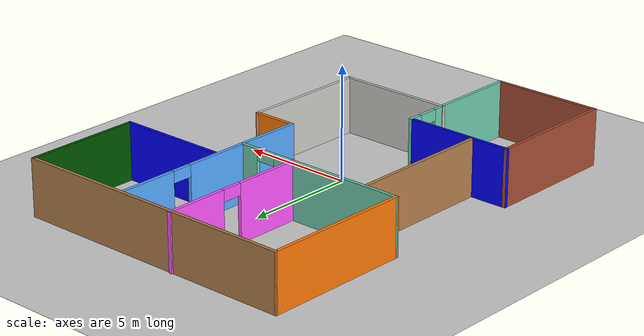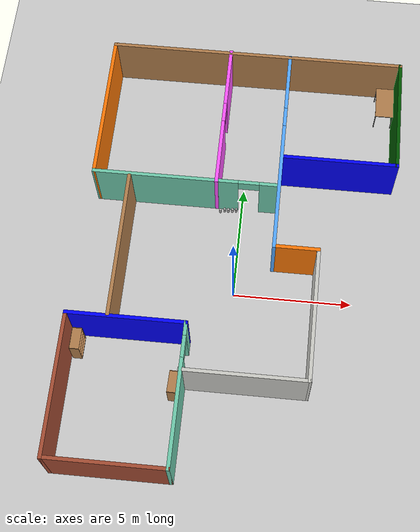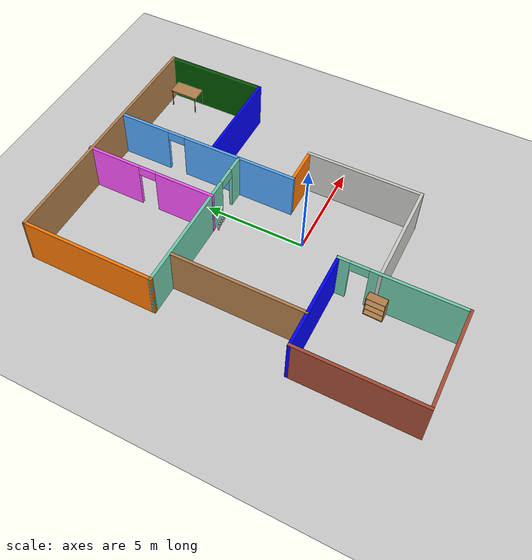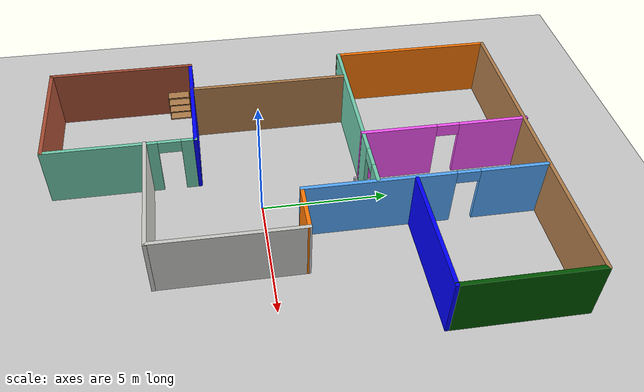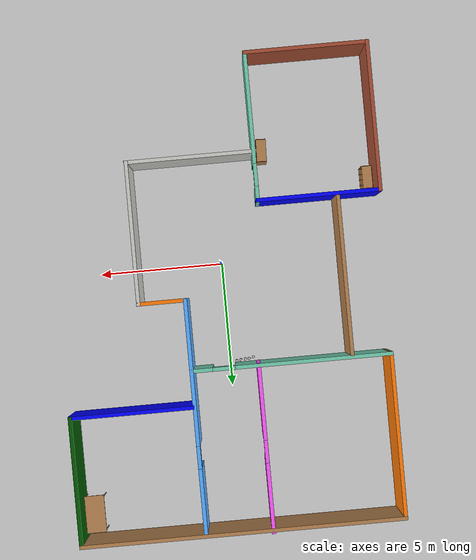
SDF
<sdf version="1.6">
 <world name="default">
  <light name="sun" type="directional">
   <pose>0 0 10 0 -0 0</pose>
   <diffuse>0.8 0.8 0.8 1</diffuse>
   <specular>0.2 0.2 0.2 1</specular>
   <attenuation>
    <range>1000</range>
    <constant>0.9</constant>
    <linear>0.01</linear>
    <quadratic>0.001</quadratic>
   </attenuation>
   <direction>-0.5 0.1 -0.9</direction>
  </light>
  <model name="ground_plane">
   <static>1</static>
   <link name="link">
    <collision name="collision">
     <geometry><plane><normal>0 0 1</normal><size>100 100</size></plane></geometry>
     <surface><friction><ode><mu>100</mu><mu2>50</mu2></ode></friction></surface>
    </collision>
    <visual name="visual">
     <cast_shadows>0</cast_shadows>
     <geometry><plane><normal>0 0 1</normal><size>100 100</size></plane></geometry>
     <material>
      <script><uri>file://media/materials/scripts/gazebo.material</uri><name>Gazebo/Grey</name></script>
     </material>
    </visual>
   </link>
  </model>
  <gravity>0 0 -9.8</gravity>
  <magnetic_field>6e-06 2.3e-05 -4.2e-05</magnetic_field>
  <atmosphere type="adiabatic"/>
  <physics name="default_physics" default="0" type="ode">
   <max_step_size>0.001</max_step_size>
   <real_time_factor>1</real_time_factor>
   <real_time_update_rate>1000</real_time_update_rate>
  </physics>
  <scene><ambient>0.4 0.4 0.4 1</ambient><background>0.7 0.7 0.7 1</background><shadows>1</shadows></scene>
  <spherical_coordinates>
   <surface_model>EARTH_WGS84</surface_model>
   <latitude_deg>0</latitude_deg>
   <longitude_deg>0</longitude_deg>
   <elevation>0</elevation>
   <heading_deg>0</heading_deg>
  </spherical_coordinates>
  <model name="new_building">
   <pose>-0.01155 1.28324 0 0 -0 0</pose>
   <link name="Wall_0">
    <collision name="Wall_0_Collision">
     <geometry><box><size>13 0.15 2.5</size></box></geometry>
     <pose>0 0 1.25 0 -0 0</pose>
    </collision>
    <visual name="Wall_0_Visual">
     <pose>0 0 1.25 0 -0 0</pose>
     <geometry><box><size>13 0.15 2.5</size></box></geometry>
     <material>
      <script><uri>file://media/materials/scripts/gazebo.material</uri><name>Gazebo/Wood</name></script>
      <ambient>1 1 1 1</ambient>
     </material>
     <meta><layer>0</layer></meta>
    </visual>
    <pose>0.081318 9.40266 0 0 -0 0</pose>
   </link>
   <link name="Wall_1">
    <collision name="Wall_1_Collision">
     <geometry><box><size>5.25 0.15 2.5</size></box></geometry>
     <pose>0 0 1.25 0 -0 0</pose>
    </collision>
    <visual name="Wall_1_Visual">
     <pose>0 0 1.25 0 -0 0</pose>
     <geometry><box><size>5.25 0.15 2.5</size></box></geometry>
     <material>
      <script><uri>file://media/materials/scripts/gazebo.material</uri><name>Gazebo/Grey</name></script>
      <ambient>0 0.333333 0 1</ambient>
     </material>
     <meta><layer>0</layer></meta>
    </visual>
    <pose>6.50632 6.85266 0 0 0 -1.5708</pose>
   </link>
   <link name="Wall_14">
    <collision name="Wall_14_Collision">
     <geometry><box><size>6 0.15 2.5</size></box></geometry>
     <pose>0 0 1.25 0 -0 0</pose>
    </collision>
    <visual name="Wall_14_Visual">
     <pose>0 0 1.25 0 -0 0</pose>
     <geometry><box><size>6 0.15 2.5</size></box></geometry>
     <material>
      <script><uri>file://media/materials/scripts/gazebo.material</uri><name>Gazebo/Bricks</name></script>
      <ambient>1 1 1 1</ambient>
     </material>
     <meta><layer>0</layer></meta>
    </visual>
    <pose>-6.50632 -6.54004 0 0 0 -1.5708</pose>
   </link>
   <link name="Wall_15">
    <collision name="Wall_15_Collision">
     <geometry><box><size>5 0.15 2.5</size></box></geometry>
     <pose>0 0 1.25 0 -0 0</pose>
    </collision>
    <visual name="Wall_15_Visual">
     <pose>0 0 1.25 0 -0 0</pose>
     <geometry><box><size>5 0.15 2.5</size></box></geometry>
     <material>
      <script><uri>file://media/materials/scripts/gazebo.material</uri><name>Gazebo/Bricks</name></script>
      <ambient>1 1 1 1</ambient>
     </material>
     <meta><layer>0</layer></meta>
    </visual>
    <pose>-4.08132 -9.46504 0 0 -0 0</pose>
   </link>
   <link name="Wall_16">
    <pose>-1.65632 -6.54004 0 0 -0 1.5708</pose>
    <visual name="Wall_16_Visual_0">
     <pose>-0.764135 0 1.25 0 -0 0</pose>
     <geometry><box><size>4.47173 0.15 2.5</size></box></geometry>
     <material>
      <script><uri>file://media/materials/scripts/gazebo.material</uri><name>Gazebo/Grey</name></script>
      <ambient>0.435294 0.796078 0.67451 1</ambient>
     </material>
     <meta><layer>0</layer></meta>
    </visual>
    <collision name="Wall_16_Collision_0">
     <geometry><box><size>4.47173 0.15 2.5</size></box></geometry>
     <pose>-0.764135 0 1.25 0 -0 0</pose>
    </collision>
    <visual name="Wall_16_Visual_1">
     <pose>2.68587 0 1.25 0 -0 0</pose>
     <geometry><box><size>0.628271 0.15 2.5</size></box></geometry>
     <material>
      <script><uri>file://media/materials/scripts/gazebo.material</uri><name>Gazebo/Grey</name></script>
      <ambient>0.435294 0.796078 0.67451 1</ambient>
     </material>
     <meta><layer>0</layer></meta>
    </visual>
    <collision name="Wall_16_Collision_1">
     <geometry><box><size>0.628271 0.15 2.5</size></box></geometry>
     <pose>2.68587 0 1.25 0 -0 0</pose>
    </collision>
    <visual name="Wall_16_Visual_2">
     <pose>1.92173 0 2.25 0 -0 0</pose>
     <geometry><box><size>0.9 0.15 0.5</size></box></geometry>
     <material>
      <script><uri>file://media/materials/scripts/gazebo.material</uri><name>Gazebo/Grey</name></script>
      <ambient>0.435294 0.796078 0.67451 1</ambient>
     </material>
     <meta><layer>0</layer></meta>
    </visual>
    <collision name="Wall_16_Collision_2">
     <geometry><box><size>0.9 0.15 0.5</size></box></geometry>
     <pose>1.92173 0 2.25 0 -0 0</pose>
    </collision>
   </link>
   <link name="Wall_18">
    <collision name="Wall_18_Collision">
     <geometry><box><size>5 0.15 2.5</size></box></geometry>
     <pose>0 0 1.25 0 -0 0</pose>
    </collision>
    <visual name="Wall_18_Visual">
     <pose>0 0 1.25 0 -0 0</pose>
     <geometry><box><size>5 0.15 2.5</size></box></geometry>
     <material>
      <script><uri>file://media/materials/scripts/gazebo.material</uri><name>Gazebo/Grey</name></script>
      <ambient>0 0 1 1</ambient>
     </material>
     <meta><layer>0</layer></meta>
    </visual>
    <pose>-4.08132 -3.61504 0 0 -0 0</pose>
   </link>
   <link name="Wall_2">
    <collision name="Wall_2_Collision">
     <geometry><box><size>5 0.15 2.5</size></box></geometry>
     <pose>0 0 1.25 0 -0 0</pose>
    </collision>
    <visual name="Wall_2_Visual">
     <pose>0 0 1.25 0 -0 0</pose>
     <geometry><box><size>5 0.15 2.5</size></box></geometry>
     <material>
      <script><uri>file://media/materials/scripts/gazebo.material</uri><name>Gazebo/Grey</name></script>
      <ambient>0 0 1 1</ambient>
     </material>
     <meta><layer>0</layer></meta>
    </visual>
    <pose>4.08132 4.30266 0 0 -0 3.14159</pose>
   </link>
   <link name="Wall_20">
    <collision name="Wall_20_Collision">
     <geometry><box><size>6.5 0.15 2.5</size></box></geometry>
     <pose>0 0 1.25 0 -0 0</pose>
    </collision>
    <visual name="Wall_20_Visual">
     <pose>0 0 1.25 0 -0 0</pose>
     <geometry><box><size>6.5 0.15 2.5</size></box></geometry>
     <material>
      <script><uri>file://media/materials/scripts/gazebo.material</uri><name>Gazebo/Wood</name></script>
      <ambient>1 1 1 1</ambient>
     </material>
     <meta><layer>0</layer></meta>
    </visual>
    <pose>-4.81839 -0.424532 0 0 -0 1.5708</pose>
   </link>
   <link name="Wall_22">
    <pose>-2.4285 2.87469 0 0 -0 0</pose>
    <visual name="Wall_22_Visual_0">
     <pose>-0.875579 0 1.25 0 -0 0</pose>
     <geometry><box><size>6.24884 0.15 2.5</size></box></geometry>
     <material>
      <script><uri>file://media/materials/scripts/gazebo.material</uri><name>Gazebo/Grey</name></script>
      <ambient>0.435294 0.796078 0.67451 1</ambient>
     </material>
     <meta><layer>0</layer></meta>
    </visual>
    <collision name="Wall_22_Collision_0">
     <geometry><box><size>6.24884 0.15 2.5</size></box></geometry>
     <pose>-0.875579 0 1.25 0 -0 0</pose>
    </collision>
    <visual name="Wall_22_Visual_1">
     <pose>3.57442 0 1.25 0 -0 0</pose>
     <geometry><box><size>0.851158 0.15 2.5</size></box></geometry>
     <material>
      <script><uri>file://media/materials/scripts/gazebo.material</uri><name>Gazebo/Grey</name></script>
      <ambient>0.435294 0.796078 0.67451 1</ambient>
     </material>
     <meta><layer>0</layer></meta>
    </visual>
    <collision name="Wall_22_Collision_1">
     <geometry><box><size>0.851158 0.15 2.5</size></box></geometry>
     <pose>3.57442 0 1.25 0 -0 0</pose>
    </collision>
    <visual name="Wall_22_Visual_2">
     <pose>2.69884 0 2.25 0 -0 0</pose>
     <geometry><box><size>0.9 0.15 0.5</size></box></geometry>
     <material>
      <script><uri>file://media/materials/scripts/gazebo.material</uri><name>Gazebo/Grey</name></script>
      <ambient>0.435294 0.796078 0.67451 1</ambient>
     </material>
     <meta><layer>0</layer></meta>
    </visual>
    <collision name="Wall_22_Collision_2">
     <geometry><box><size>0.9 0.15 0.5</size></box></geometry>
     <pose>2.69884 0 2.25 0 -0 0</pose>
    </collision>
   </link>
   <link name="Wall_24">
    <collision name="Wall_24_Collision">
     <geometry><box><size>6.67799 0.15 2.5</size></box></geometry>
     <pose>0 0 1.25 0 -0 0</pose>
    </collision>
    <visual name="Wall_24_Visual">
     <pose>0 0 1.25 0 -0 0</pose>
     <geometry><box><size>6.67799 0.15 2.5</size></box></geometry>
     <material>
      <script><uri>file://media/materials/scripts/gazebo.material</uri><name>Gazebo/Grey</name></script>
      <ambient>0.996078 0.47451 0.0196078 1</ambient>
     </material>
     <meta><layer>0</layer></meta>
    </visual>
    <pose>-6.34859 6.13868 0 0 0 -1.5723</pose>
   </link>
   <link name="Wall_26">
    <pose>-1.10877 6.16504 0 0 -0 1.5708</pose>
    <visual name="Wall_26_Visual_0">
     <pose>-1.85318 0 1.25 0 -0 0</pose>
     <geometry><box><size>3.04365 0.15 2.5</size></box></geometry>
     <material>
      <script><uri>file://media/materials/scripts/gazebo.material</uri><name>Gazebo/Grey</name></script>
      <ambient>1 0.333333 1 1</ambient>
     </material>
     <meta><layer>0</layer></meta>
    </visual>
    <collision name="Wall_26_Collision_0">
     <geometry><box><size>3.04365 0.15 2.5</size></box></geometry>
     <pose>-1.85318 0 1.25 0 -0 0</pose>
    </collision>
    <visual name="Wall_26_Visual_1">
     <pose>1.97182 0 1.25 0 -0 0</pose>
     <geometry><box><size>2.80635 0.15 2.5</size></box></geometry>
     <material>
      <script><uri>file://media/materials/scripts/gazebo.material</uri><name>Gazebo/Grey</name></script>
      <ambient>1 0.333333 1 1</ambient>
     </material>
     <meta><layer>0</layer></meta>
    </visual>
    <collision name="Wall_26_Collision_1">
     <geometry><box><size>2.80635 0.15 2.5</size></box></geometry>
     <pose>1.97182 0 1.25 0 -0 0</pose>
    </collision>
    <visual name="Wall_26_Visual_2">
     <pose>0.118651 0 2.25 0 -0 0</pose>
     <geometry><box><size>0.9 0.15 0.5</size></box></geometry>
     <material>
      <script><uri>file://media/materials/scripts/gazebo.material</uri><name>Gazebo/Grey</name></script>
      <ambient>1 0.333333 1 1</ambient>
     </material>
     <meta><layer>0</layer></meta>
    </visual>
    <collision name="Wall_26_Collision_2">
     <geometry><box><size>0.9 0.15 0.5</size></box></geometry>
     <pose>0.118651 0 2.25 0 -0 0</pose>
    </collision>
   </link>
   <link name="Wall_4">
    <pose>1.56183 4.72766 0 0 0 -1.5708</pose>
    <visual name="Wall_4_Visual_0">
     <pose>-3.37801 0 1.25 0 -0 0</pose>
     <geometry><box><size>2.74397 0.15 2.5</size></box></geometry>
     <material>
      <script><uri>file://media/materials/scripts/gazebo.material</uri><name>Gazebo/Grey</name></script>
      <ambient>0.333333 0.666667 1 1</ambient>
     </material>
     <meta><layer>0</layer></meta>
    </visual>
    <collision name="Wall_4_Collision_0">
     <geometry><box><size>2.74397 0.15 2.5</size></box></geometry>
     <pose>-3.37801 0 1.25 0 -0 0</pose>
    </collision>
    <visual name="Wall_4_Visual_1">
     <pose>1.82199 0 1.25 0 -0 0</pose>
     <geometry><box><size>5.85603 0.15 2.5</size></box></geometry>
     <material>
      <script><uri>file://media/materials/scripts/gazebo.material</uri><name>Gazebo/Grey</name></script>
      <ambient>0.333333 0.666667 1 1</ambient>
     </material>
     <meta><layer>0</layer></meta>
    </visual>
    <collision name="Wall_4_Collision_1">
     <geometry><box><size>5.85603 0.15 2.5</size></box></geometry>
     <pose>1.82199 0 1.25 0 -0 0</pose>
    </collision>
    <visual name="Wall_4_Visual_2">
     <pose>-1.55603 0 2.25 0 -0 0</pose>
     <geometry><box><size>0.9 0.15 0.5</size></box></geometry>
     <material>
      <script><uri>file://media/materials/scripts/gazebo.material</uri><name>Gazebo/Grey</name></script>
      <ambient>0.333333 0.666667 1 1</ambient>
     </material>
     <meta><layer>0</layer></meta>
    </visual>
    <collision name="Wall_4_Collision_2">
     <geometry><box><size>0.9 0.15 0.5</size></box></geometry>
     <pose>-1.55603 0 2.25 0 -0 0</pose>
    </collision>
   </link>
   <link name="Wall_5">
    <collision name="Wall_5_Collision">
     <geometry><box><size>2 0.15 2.5</size></box></geometry>
     <pose>0 0 1.25 0 -0 0</pose>
    </collision>
    <visual name="Wall_5_Visual">
     <pose>0 0 1.25 0 -0 0</pose>
     <geometry><box><size>2 0.15 2.5</size></box></geometry>
     <material>
      <script><uri>file://media/materials/scripts/gazebo.material</uri><name>Gazebo/Grey</name></script>
      <ambient>0.996078 0.47451 0.0196078 1</ambient>
     </material>
     <meta><layer>0</layer></meta>
    </visual>
    <pose>2.48683 0.052664 0 0 -0 0</pose>
   </link>
   <link name="Wall_6">
    <collision name="Wall_6_Collision">
     <geometry><box><size>5.76161 0.15 2.5</size></box></geometry>
     <pose>0 0 1.25 0 -0 0</pose>
    </collision>
    <visual name="Wall_6_Visual">
     <pose>0 0 1.25 0 -0 0</pose>
     <geometry><box><size>5.76161 0.15 2.5</size></box></geometry>
     <material>
      <script><uri>file://media/materials/scripts/gazebo.material</uri><name>Gazebo/CeilingTiled</name></script>
      <ambient>1 1 1 1</ambient>
     </material>
     <meta><layer>0</layer></meta>
    </visual>
    <pose>3.40608 -2.75309 0 0 0 -1.57285</pose>
   </link>
   <link name="Wall_7">
    <collision name="Wall_7_Collision">
     <geometry><box><size>5.25 0.15 2.5</size></box></geometry>
     <pose>0 0 1.25 0 -0 0</pose>
    </collision>
    <visual name="Wall_7_Visual">
     <pose>0 0 1.25 0 -0 0</pose>
     <geometry><box><size>5.25 0.15 2.5</size></box></geometry>
     <material>
      <script><uri>file://media/materials/scripts/gazebo.material</uri><name>Gazebo/CeilingTiled</name></script>
      <ambient>1 1 1 1</ambient>
     </material>
     <meta><layer>0</layer></meta>
    </visual>
    <pose>0.861826 -5.55884 0 0 -0 3.14159</pose>
   </link>
   <static>1</static>
  </model>
  <model name="bookshelf">
   <static>1</static>
   <link name="link">
    <inertial><mass>1</mass></inertial>
    <collision name="back">
     <pose>0 0.005 0.6 0 -0 0</pose>
     <geometry><box><size>0.9 0.01 1.2</size></box></geometry>
    </collision>
    <visual name="visual1">
     <pose>0 0.005 0.6 0 -0 0</pose>
     <geometry><box><size>0.9 0.01 1.2</size></box></geometry>
     <material>
      <script><uri>file://media/materials/scripts/gazebo.material</uri><name>Gazebo/Wood</name></script>
     </material>
    </visual>
    <collision name="left_side">
     <pose>0.45 -0.195 0.6 0 -0 0</pose>
     <geometry><box><size>0.02 0.4 1.2</size></box></geometry>
    </collision>
    <visual name="visual2">
     <pose>0.45 -0.195 0.6 0 -0 0</pose>
     <geometry><box><size>0.02 0.4 1.2</size></box></geometry>
     <material>
      <script><uri>file://media/materials/scripts/gazebo.material</uri><name>Gazebo/Wood</name></script>
     </material>
    </visual>
    <collision name="right_side">
     <pose>-0.45 -0.195 0.6 0 -0 0</pose>
     <geometry><box><size>0.02 0.4 1.2</size></box></geometry>
    </collision>
    <visual name="visual3">
     <pose>-0.45 -0.195 0.6 0 -0 0</pose>
     <geometry><box><size>0.02 0.4 1.2</size></box></geometry>
     <material>
      <script><uri>file://media/materials/scripts/gazebo.material</uri><name>Gazebo/Wood</name></script>
     </material>
    </visual>
    <collision name="bottom">
     <pose>0 -0.195 0.03 0 -0 0</pose>
     <geometry><box><size>0.88 0.4 0.06</size></box></geometry>
    </collision>
    <visual name="visual4">
     <pose>0 -0.195 0.03 0 -0 0</pose>
     <geometry><box><size>0.88 0.4 0.06</size></box></geometry>
     <material>
      <script><uri>file://media/materials/scripts/gazebo.material</uri><name>Gazebo/Wood</name></script>
     </material>
    </visual>
    <collision name="top">
     <pose>0 -0.195 1.19 0 -0 0</pose>
     <geometry><box><size>0.88 0.4 0.02</size></box></geometry>
    </collision>
    <visual name="visual5">
     <pose>0 -0.195 1.19 0 -0 0</pose>
     <geometry><box><size>0.88 0.4 0.02</size></box></geometry>
     <material>
      <script><uri>file://media/materials/scripts/gazebo.material</uri><name>Gazebo/Wood</name></script>
     </material>
    </visual>
    <collision name="low_shelf">
     <pose>0 -0.195 0.43 0 -0 0</pose>
     <geometry><box><size>0.88 0.4 0.02</size></box></geometry>
    </collision>
    <visual name="visual6">
     <pose>0 -0.195 0.43 0 -0 0</pose>
     <geometry><box><size>0.88 0.4 0.02</size></box></geometry>
     <material>
      <script><uri>file://media/materials/scripts/gazebo.material</uri><name>Gazebo/Wood</name></script>
     </material>
    </visual>
    <collision name="high_shelf">
     <pose>0 -0.195 0.8 0 -0 0</pose>
     <geometry><box><size>0.88 0.4 0.02</size></box></geometry>
    </collision>
    <visual name="visual7">
     <pose>0 -0.195 0.8 0 -0 0</pose>
     <geometry><box><size>0.88 0.4 0.02</size></box></geometry>
     <material>
      <script><uri>file://media/materials/scripts/gazebo.material</uri><name>Gazebo/Wood</name></script>
     </material>
    </visual>
   </link>
   <pose>-1.81283 -4.42557 0 0 0 -1.60048</pose>
  </model>
  <model name="beer">
   <link name="link">
    <pose>0 0 0.115 0 -0 0</pose>
    <inertial>
     <mass>0.39</mass>
     <inertia><ixx>0.00058</ixx><ixy>0</ixy><ixz>0</ixz><iyy>0.00058</iyy><iyz>0</iyz><izz>0.00019</izz></inertia>
    </inertial>
    <collision name="collision">
     <geometry><cylinder><radius>0.055</radius><length>0.23</length></cylinder></geometry>
    </collision>
    <visual name="visual">
     <geometry><cylinder><radius>0.055</radius><length>0.23</length></cylinder></geometry>
     <material>
      <script>
       <uri>model://beer/materials/scripts</uri>
       <uri>model://beer/materials/textures</uri>
       <name>Beer/Diffuse</name>
      </script>
     </material>
    </visual>
   </link>
   <pose>-0.420975 3.99114 -2e-06 1e-06 -0 -0.00013</pose>
  </model>
  <model name="beer_clone">
   <link name="link">
    <pose>0 0 0.115 0 -0 0</pose>
    <inertial>
     <mass>0.39</mass>
     <inertia><ixx>0.00058</ixx><ixy>0</ixy><ixz>0</ixz><iyy>0.00058</iyy><iyz>0</iyz><izz>0.00019</izz></inertia>
    </inertial>
    <collision name="collision">
     <geometry><cylinder><radius>0.055</radius><length>0.23</length></cylinder></geometry>
    </collision>
    <visual name="visual">
     <geometry><cylinder><radius>0.055</radius><length>0.23</length></cylinder></geometry>
     <material>
      <script>
       <uri>model://beer/materials/scripts</uri>
       <uri>model://beer/materials/textures</uri>
       <name>Beer/Diffuse</name>
      </script>
     </material>
    </visual>
   </link>
   <pose>-0.771657 3.97416 -2e-06 1e-06 0 -0.000136</pose>
  </model>
  <model name="beer_clone_0">
   <link name="link">
    <pose>0 0 0.115 0 -0 0</pose>
    <inertial>
     <mass>0.39</mass>
     <inertia><ixx>0.00058</ixx><ixy>0</ixy><ixz>0</ixz><iyy>0.00058</iyy><iyz>0</iyz><izz>0.00019</izz></inertia>
    </inertial>
    <collision name="collision">
     <geometry><cylinder><radius>0.055</radius><length>0.23</length></cylinder></geometry>
    </collision>
    <visual name="visual">
     <geometry><cylinder><radius>0.055</radius><length>0.23</length></cylinder></geometry>
     <material>
      <script>
       <uri>model://beer/materials/scripts</uri>
       <uri>model://beer/materials/textures</uri>
       <name>Beer/Diffuse</name>
      </script>
     </material>
    </visual>
   </link>
   <pose>-0.611208 3.9772 -2e-06 1e-06 -0 -0.000135</pose>
  </model>
  <model name="beer_clone_2">
   <link name="link">
    <pose>0 0 0.115 0 -0 0</pose>
    <inertial>
     <mass>0.39</mass>
     <inertia><ixx>0.00058</ixx><ixy>0</ixy><ixz>0</ixz><iyy>0.00058</iyy><iyz>0</iyz><izz>0.00019</izz></inertia>
    </inertial>
    <collision name="collision">
     <geometry><cylinder><radius>0.055</radius><length>0.23</length></cylinder></geometry>
    </collision>
    <visual name="visual">
     <geometry><cylinder><radius>0.055</radius><length>0.23</length></cylinder></geometry>
     <material>
      <script>
       <uri>model://beer/materials/scripts</uri>
       <uri>model://beer/materials/textures</uri>
       <name>Beer/Diffuse</name>
      </script>
     </material>
    </visual>
   </link>
   <pose>-0.264315 4.01853 -7e-06 0 0 -0.021698</pose>
  </model>
  <model name="beer_clone_2_clone">
   <link name="link">
    <pose>0 0 0.115 0 -0 0</pose>
    <inertial>
     <mass>0.39</mass>
     <inertia><ixx>0.00058</ixx><ixy>0</ixy><ixz>0</ixz><iyy>0.00058</iyy><iyz>0</iyz><izz>0.00019</izz></inertia>
    </inertial>
    <collision name="collision">
     <geometry><cylinder><radius>0.055</radius><length>0.23</length></cylinder></geometry>
    </collision>
    <visual name="visual">
     <geometry><cylinder><radius>0.055</radius><length>0.23</length></cylinder></geometry>
     <material>
      <script>
       <uri>model://beer/materials/scripts</uri>
       <uri>model://beer/materials/textures</uri>
       <name>Beer/Diffuse</name>
      </script>
     </material>
    </visual>
   </link>
   <pose>-0.948647 3.92583 -7e-06 0 0 -0.021702</pose>
  </model>
  <model name="bookshelf_0">
   <static>1</static>
   <link name="link">
    <inertial><mass>1</mass></inertial>
    <collision name="back">
     <pose>0 0.005 0.6 0 -0 0</pose>
     <geometry><box><size>0.9 0.01 1.2</size></box></geometry>
    </collision>
    <visual name="visual1">
     <pose>0 0.005 0.6 0 -0 0</pose>
     <geometry><box><size>0.9 0.01 1.2</size></box></geometry>
     <material>
      <script><uri>file://media/materials/scripts/gazebo.material</uri><name>Gazebo/Wood</name></script>
     </material>
    </visual>
    <collision name="left_side">
     <pose>0.45 -0.195 0.6 0 -0 0</pose>
     <geometry><box><size>0.02 0.4 1.2</size></box></geometry>
    </collision>
    <visual name="visual2">
     <pose>0.45 -0.195 0.6 0 -0 0</pose>
     <geometry><box><size>0.02 0.4 1.2</size></box></geometry>
     <material>
      <script><uri>file://media/materials/scripts/gazebo.material</uri><name>Gazebo/Wood</name></script>
     </material>
    </visual>
    <collision name="right_side">
     <pose>-0.45 -0.195 0.6 0 -0 0</pose>
     <geometry><box><size>0.02 0.4 1.2</size></box></geometry>
    </collision>
    <visual name="visual3">
     <pose>-0.45 -0.195 0.6 0 -0 0</pose>
     <geometry><box><size>0.02 0.4 1.2</size></box></geometry>
     <material>
      <script><uri>file://media/materials/scripts/gazebo.material</uri><name>Gazebo/Wood</name></script>
     </material>
    </visual>
    <collision name="bottom">
     <pose>0 -0.195 0.03 0 -0 0</pose>
     <geometry><box><size>0.88 0.4 0.06</size></box></geometry>
    </collision>
    <visual name="visual4">
     <pose>0 -0.195 0.03 0 -0 0</pose>
     <geometry><box><size>0.88 0.4 0.06</size></box></geometry>
     <material>
      <script><uri>file://media/materials/scripts/gazebo.material</uri><name>Gazebo/Wood</name></script>
     </material>
    </visual>
    <collision name="top">
     <pose>0 -0.195 1.19 0 -0 0</pose>
     <geometry><box><size>0.88 0.4 0.02</size></box></geometry>
    </collision>
    <visual name="visual5">
     <pose>0 -0.195 1.19 0 -0 0</pose>
     <geometry><box><size>0.88 0.4 0.02</size></box></geometry>
     <material>
      <script><uri>file://media/materials/scripts/gazebo.material</uri><name>Gazebo/Wood</name></script>
     </material>
    </visual>
    <collision name="low_shelf">
     <pose>0 -0.195 0.43 0 -0 0</pose>
     <geometry><box><size>0.88 0.4 0.02</size></box></geometry>
    </collision>
    <visual name="visual6">
     <pose>0 -0.195 0.43 0 -0 0</pose>
     <geometry><box><size>0.88 0.4 0.02</size></box></geometry>
     <material>
      <script><uri>file://media/materials/scripts/gazebo.material</uri><name>Gazebo/Wood</name></script>
     </material>
    </visual>
    <collision name="high_shelf">
     <pose>0 -0.195 0.8 0 -0 0</pose>
     <geometry><box><size>0.88 0.4 0.02</size></box></geometry>
    </collision>
    <visual name="visual7">
     <pose>0 -0.195 0.8 0 -0 0</pose>
     <geometry><box><size>0.88 0.4 0.02</size></box></geometry>
     <material>
      <script><uri>file://media/materials/scripts/gazebo.material</uri><name>Gazebo/Wood</name></script>
     </material>
    </visual>
   </link>
   <pose>-6.38067 -2.96429 0 0 -0 1.57205</pose>
  </model>
  <model name="table">
   <static>1</static>
   <link name="link">
    <collision name="surface">
     <pose>0 0 1 0 -0 0</pose>
     <geometry><box><size>1.5 0.8 0.03</size></box></geometry>
     <surface><friction><ode><mu>0.6</mu><mu2>0.6</mu2></ode></friction></surface>
    </collision>
    <visual name="visual1">
     <pose>0 0 1 0 -0 0</pose>
     <geometry><box><size>1.5 0.8 0.03</size></box></geometry>
     <material>
      <script><uri>file://media/materials/scripts/gazebo.material</uri><name>Gazebo/Wood</name></script>
     </material>
    </visual>
    <collision name="front_left_leg">
     <pose>0.68 0.38 0.5 0 -0 0</pose>
     <geometry><cylinder><radius>0.02</radius><length>1</length></cylinder></geometry>
    </collision>
    <visual name="front_left_leg">
     <pose>0.68 0.38 0.5 0 -0 0</pose>
     <geometry><cylinder><radius>0.02</radius><length>1</length></cylinder></geometry>
     <material>
      <script><uri>file://media/materials/scripts/gazebo.material</uri><name>Gazebo/Grey</name></script>
     </material>
    </visual>
    <collision name="front_right_leg">
     <pose>0.68 -0.38 0.5 0 -0 0</pose>
     <geometry><cylinder><radius>0.02</radius><length>1</length></cylinder></geometry>
    </collision>
    <visual name="front_right_leg">
     <pose>0.68 -0.38 0.5 0 -0 0</pose>
     <geometry><cylinder><radius>0.02</radius><length>1</length></cylinder></geometry>
     <material>
      <script><uri>file://media/materials/scripts/gazebo.material</uri><name>Gazebo/Grey</name></script>
     </material>
    </visual>
    <collision name="back_right_leg">
     <pose>-0.68 -0.38 0.5 0 -0 0</pose>
     <geometry><cylinder><radius>0.02</radius><length>1</length></cylinder></geometry>
    </collision>
    <visual name="back_right_leg">
     <pose>-0.68 -0.38 0.5 0 -0 0</pose>
     <geometry><cylinder><radius>0.02</radius><length>1</length></cylinder></geometry>
     <material>
      <script><uri>file://media/materials/scripts/gazebo.material</uri><name>Gazebo/Grey</name></script>
     </material>
    </visual>
    <collision name="back_left_leg">
     <pose>-0.68 0.38 0.5 0 -0 0</pose>
     <geometry><cylinder><radius>0.02</radius><length>1</length></cylinder></geometry>
    </collision>
    <visual name="back_left_leg">
     <pose>-0.68 0.38 0.5 0 -0 0</pose>
     <geometry><cylinder><radius>0.02</radius><length>1</length></cylinder></geometry>
     <material>
      <script><uri>file://media/materials/scripts/gazebo.material</uri><name>Gazebo/Grey</name></script>
     </material>
    </visual>
   </link>
   <pose>6.01414 9.66236 0 0 -0 1.57248</pose>
  </model>
 </world>
</sdf>
